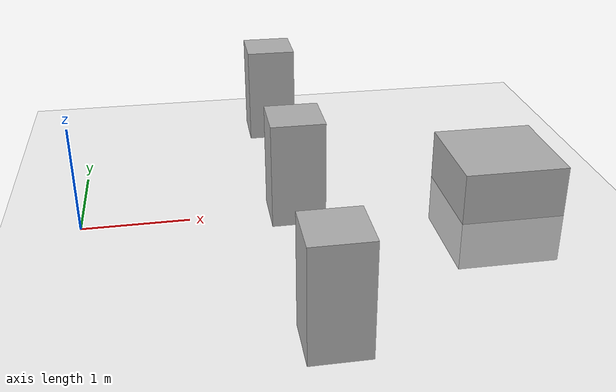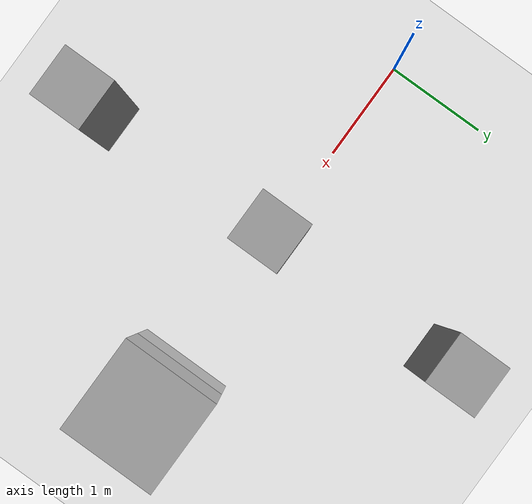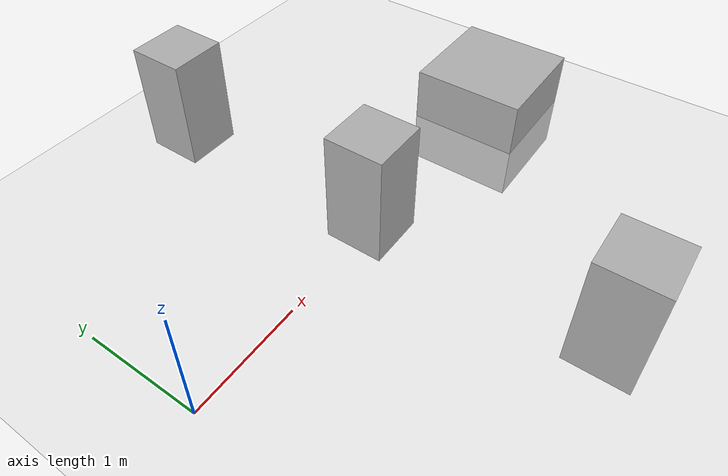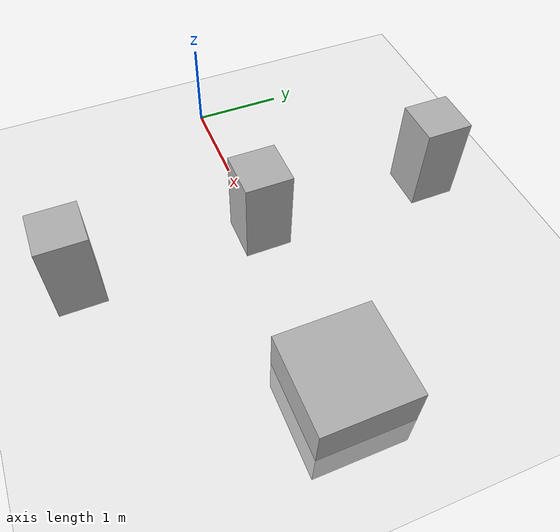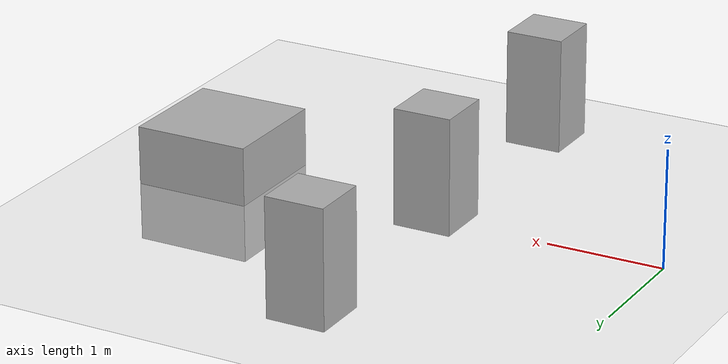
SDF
<sdf version="1.10">
  <world name="empty">
    <physics name="1ms" type="ignored">
      <max_step_size>0.001</max_step_size>
      <real_time_factor>1.0</real_time_factor>
    </physics>
    <plugin filename="gz-sim-physics-system" name="gz::sim::systems::Physics" />
    <plugin filename="gz-sim-user-commands-system" name="gz::sim::systems::UserCommands" />
    <plugin filename="gz-sim-scene-broadcaster-system" name="gz::sim::systems::SceneBroadcaster" />
    <plugin filename="gz-sim-sensors-system" name="gz::sim::systems::Sensors">
      <render_engine>ogre2</render_engine>
    </plugin>
    <plugin
      filename="gz-sim-imu-system"
      name="gz::sim::systems::Imu">
    </plugin>
    <plugin filename="gz-sim-contact-system" name="gz::sim::systems::Contact" />

    <light type="directional" name="sun">
      <cast_shadows>true</cast_shadows>
      <pose>0 0 10 0 0 0</pose>
      <diffuse>0.8 0.8 0.8 1</diffuse>
      <specular>0.2 0.2 0.2 1</specular>
      <attenuation>
        <range>1000</range>
        <constant>0.9</constant>
        <linear>0.01</linear>
        <quadratic>0.001</quadratic>
      </attenuation>
      <direction>-0.5 0.1 -0.9</direction>
    </light>

    <model name="ground_plane">
      <static>true</static>
      <link name="link">
        <collision name="collision">
          <geometry>
            <plane>
              <normal>0 0 1</normal>
              <size>100 100</size>
            </plane>
          </geometry>
        </collision>
        <visual name="visual">
          <geometry>
            <plane>
              <normal>0 0 1</normal>
              <size>100 100</size>
            </plane>
          </geometry>
          <material>
            <ambient>0.9 0.9 0.9 1</ambient>
            <diffuse>0.9 0.9 0.9 1</diffuse>
            <specular>0.9 0.9 0.9 1</specular>
          </material>
        </visual>
      </link>
    </model>

    <model name="box">
      <static>true</static>
      <pose>2 0 0.5 0 0 0</pose>
      <link name="link">
        <collision name="collision">
          <geometry>
            <box>
              <size>0.5 0.5 1</size>
            </box>
          </geometry>
        </collision>
        <visual name="visual">
          <geometry>
            <box>
              <size>0.5 0.5 1</size>
            </box>
          </geometry>
          <material>
            <ambient>0.7 0.7 0.7 1</ambient>
            <diffuse>0.7 0.7 0.7 1</diffuse>
            <specular>0.7 0.7 0.7 1</specular>
          </material>
        </visual>
      </link>
    </model>

    <model name="box2">
      <static>true</static>
      <pose>2 2 0.5 0 0 0</pose>
      <link name="link">
        <collision name="collision">
          <geometry>
            <box>
              <size>0.5 0.5 1</size>
            </box>
          </geometry>
        </collision>
        <visual name="visual">
          <geometry>
            <box>
              <size>0.5 0.5 1</size>
            </box>
          </geometry>
          <material>
            <ambient>0.7 0.7 0.7 1</ambient>
            <diffuse>0.7 0.7 0.7 1</diffuse>
            <specular>0.7 0.7 0.7 1</specular>
          </material>
        </visual>
      </link>
    </model>

    <model name="box3">
      <static>true</static>
      <pose>2 -2 0.5 0 0 0</pose>
      <link name="link">
        <collision name="collision">
          <geometry>
            <box>
              <size>0.5 0.5 1</size>
            </box>
          </geometry>
        </collision>
        <visual name="visual">
          <geometry>
            <box>
              <size>0.5 0.5 1</size>
            </box>
          </geometry>
          <material>
            <ambient>0.7 0.7 0.7 1</ambient>
            <diffuse>0.7 0.7 0.7 1</diffuse>
            <specular>0.7 0.7 0.7 1</specular>
          </material>
        </visual>
      </link>
    </model>

    <model name="box12">
      <static>true</static>
      <pose>4 0 0 0 0 0</pose>
      <link name="link">
        <collision name="collision">
          <geometry>
            <box>
              <size>1 1 1</size>
            </box>
          </geometry>
        </collision>
        <visual name="visual">
          <geometry>
            <box>
              <size>1 1 1</size>
            </box>
          </geometry>
          <material>
            <ambient>0.7 0.7 0.7 1</ambient>
            <diffuse>0.7 0.7 0.7 1</diffuse>
            <specular>0.7 0.7 0.7 1</specular>
          </material>
        </visual>
      </link>
    </model>
  </world>
</sdf>
